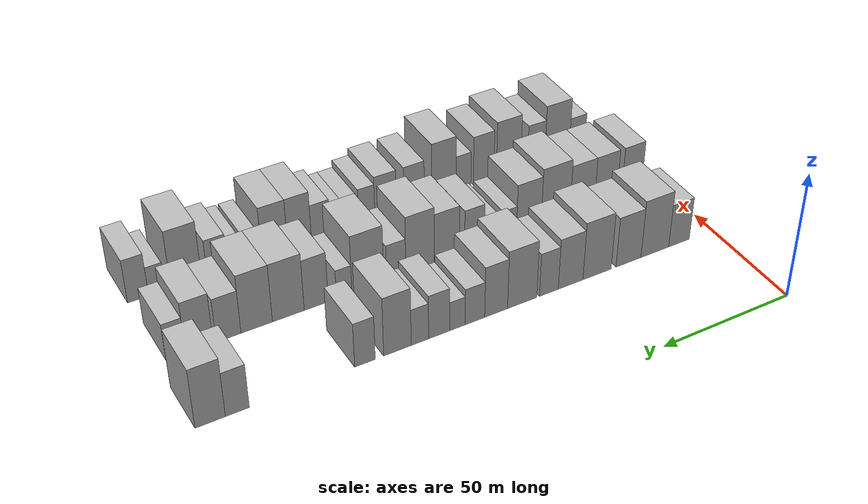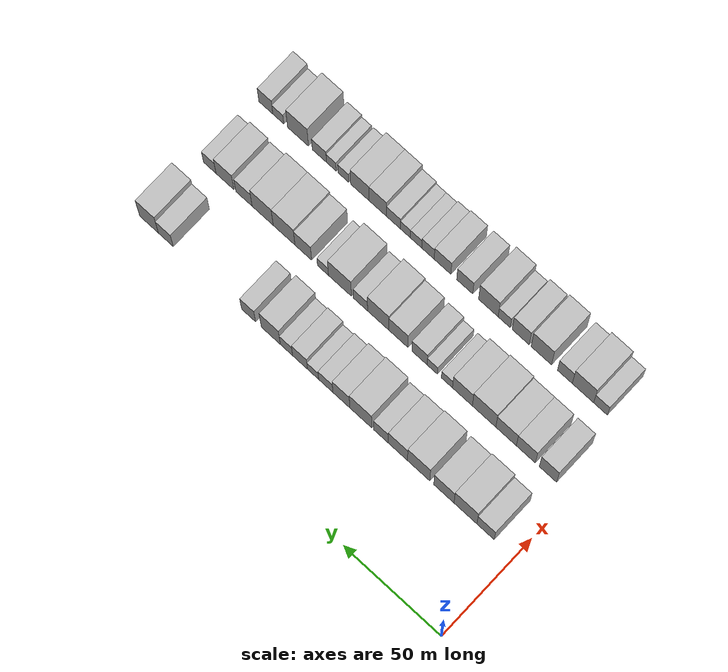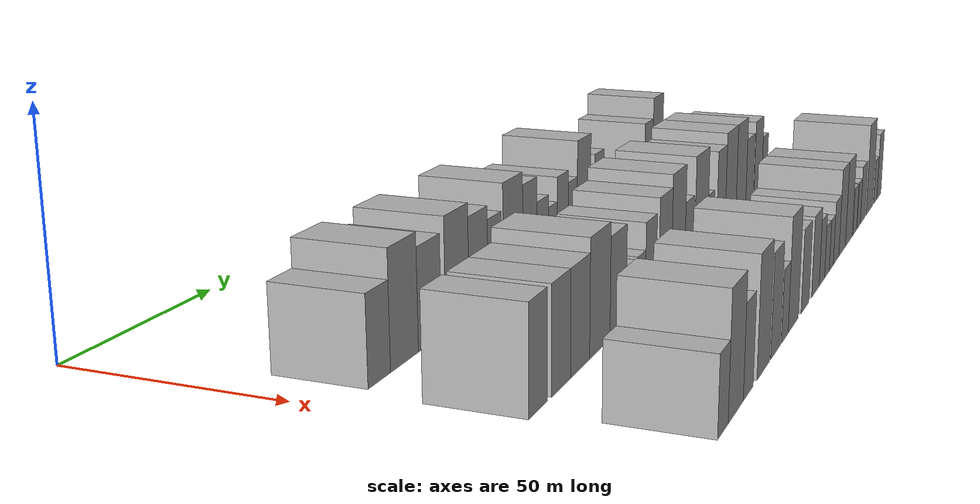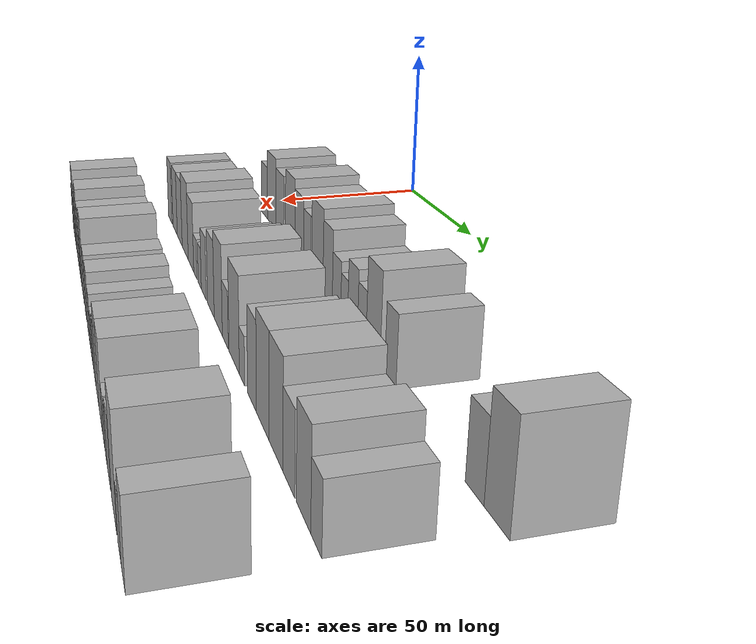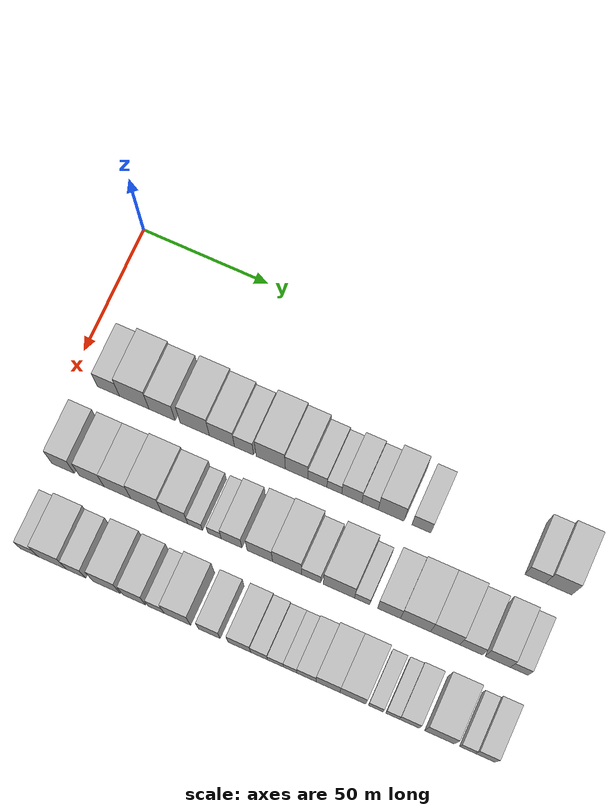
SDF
<sdf version="1.6">
 <world name="default">
  <model name="building_40">
   <static>1</static>
   <pose>50.0000 14.4750 0 0.000000 0.000000 0.000000</pose>
   <link name="link">
    <pose>0 0 9.00 0 0 0</pose>
    <collision name="collision"><geometry><box><size>20.0000 8.7886 18.0000</size></box></geometry></collision>
    <visual name="visual">
     <cast_shadows>0</cast_shadows>
     <geometry><box><size>20.0000 8.7886 18.0000</size></box></geometry>
     <material>
      <script>
       <uri>model://HANNAS_wall/materials/scripts</uri>
       <uri>model://HANNAS_wall/materials/textures</uri>
       <name>vrc/HANNAS_wall</name>
      </script>
     </material>
    </visual>
   </link>
  </model>
  <model name="building_41">
   <static>1</static>
   <pose>50.0000 24.6929 0 0.000000 0.000000 0.000000</pose>
   <link name="link">
    <pose>0 0 12.00 0 0 0</pose>
    <collision name="collision"><geometry><box><size>20.0000 11.6471 24.0000</size></box></geometry></collision>
    <visual name="visual">
     <cast_shadows>0</cast_shadows>
     <geometry><box><size>20.0000 11.6471 24.0000</size></box></geometry>
     <material>
      <script>
       <uri>model://HANNAS_wall/materials/scripts</uri>
       <uri>model://HANNAS_wall/materials/textures</uri>
       <name>vrc/HANNAS_wall</name>
      </script>
     </material>
    </visual>
   </link>
  </model>
  <model name="building_42">
   <static>1</static>
   <pose>50.0000 35.6729 0 0.000000 0.000000 0.000000</pose>
   <link name="link">
    <pose>0 0 10.50 0 0 0</pose>
    <collision name="collision"><geometry><box><size>20.0000 10.3129 21.0000</size></box></geometry></collision>
    <visual name="visual">
     <cast_shadows>0</cast_shadows>
     <geometry><box><size>20.0000 10.3129 21.0000</size></box></geometry>
     <material>
      <script>
       <uri>model://HANNAS_wall/materials/scripts</uri>
       <uri>model://HANNAS_wall/materials/textures</uri>
       <name>vrc/HANNAS_wall</name>
      </script>
     </material>
    </visual>
   </link>
  </model>
  <model name="building_43">
   <static>1</static>
   <pose>50.0000 48.5430 0 0.000000 0.000000 0.000000</pose>
   <link name="link">
    <pose>0 0 12.00 0 0 0</pose>
    <collision name="collision"><geometry><box><size>20.0000 11.4274 24.0000</size></box></geometry></collision>
    <visual name="visual">
     <cast_shadows>0</cast_shadows>
     <geometry><box><size>20.0000 11.4274 24.0000</size></box></geometry>
     <material>
      <script>
       <uri>model://HANNAS_wall/materials/scripts</uri>
       <uri>model://HANNAS_wall/materials/textures</uri>
       <name>vrc/HANNAS_wall</name>
      </script>
     </material>
    </visual>
   </link>
  </model>
  <model name="building_44">
   <static>1</static>
   <pose>50.0000 59.1846 0 0.000000 0.000000 0.000000</pose>
   <link name="link">
    <pose>0 0 10.50 0 0 0</pose>
    <collision name="collision"><geometry><box><size>20.0000 9.8557 21.0000</size></box></geometry></collision>
    <visual name="visual">
     <cast_shadows>0</cast_shadows>
     <geometry><box><size>20.0000 9.8557 21.0000</size></box></geometry>
     <material>
      <script>
       <uri>model://HANNAS_wall/materials/scripts</uri>
       <uri>model://HANNAS_wall/materials/textures</uri>
       <name>vrc/HANNAS_wall</name>
      </script>
     </material>
    </visual>
   </link>
  </model>
  <model name="building_45">
   <static>1</static>
   <pose>50.0000 67.8350 0 0.000000 0.000000 0.000000</pose>
   <link name="link">
    <pose>0 0 9.00 0 0 0</pose>
    <collision name="collision"><geometry><box><size>20.0000 7.4450 18.0000</size></box></geometry></collision>
    <visual name="visual">
     <cast_shadows>0</cast_shadows>
     <geometry><box><size>20.0000 7.4450 18.0000</size></box></geometry>
     <material>
      <script>
       <uri>model://HANNAS_wall/materials/scripts</uri>
       <uri>model://HANNAS_wall/materials/textures</uri>
       <name>vrc/HANNAS_wall</name>
      </script>
     </material>
    </visual>
   </link>
  </model>
  <model name="building_46">
   <static>1</static>
   <pose>50.0000 78.2285 0 0.000000 0.000000 0.000000</pose>
   <link name="link">
    <pose>0 0 12.00 0 0 0</pose>
    <collision name="collision"><geometry><box><size>20.0000 11.3419 24.0000</size></box></geometry></collision>
    <visual name="visual">
     <cast_shadows>0</cast_shadows>
     <geometry><box><size>20.0000 11.3419 24.0000</size></box></geometry>
     <material>
      <script>
       <uri>model://HANNAS_wall/materials/scripts</uri>
       <uri>model://HANNAS_wall/materials/textures</uri>
       <name>vrc/HANNAS_wall</name>
      </script>
     </material>
    </visual>
   </link>
  </model>
  <model name="building_47">
   <static>1</static>
   <pose>50.0000 88.2639 0 0.000000 0.000000 0.000000</pose>
   <link name="link">
    <pose>0 0 10.50 0 0 0</pose>
    <collision name="collision"><geometry><box><size>20.0000 8.7290 21.0000</size></box></geometry></collision>
    <visual name="visual">
     <cast_shadows>0</cast_shadows>
     <geometry><box><size>20.0000 8.7290 21.0000</size></box></geometry>
     <material>
      <script>
       <uri>model://HANNAS_wall/materials/scripts</uri>
       <uri>model://HANNAS_wall/materials/textures</uri>
       <name>vrc/HANNAS_wall</name>
      </script>
     </material>
    </visual>
   </link>
  </model>
  <model name="building_48">
   <static>1</static>
   <pose>50.0000 96.3212 0 0.000000 0.000000 0.000000</pose>
   <link name="link">
    <pose>0 0 7.50 0 0 0</pose>
    <collision name="collision"><geometry><box><size>20.0000 7.3855 15.0000</size></box></geometry></collision>
    <visual name="visual">
     <cast_shadows>0</cast_shadows>
     <geometry><box><size>20.0000 7.3855 15.0000</size></box></geometry>
     <material>
      <script>
       <uri>model://HANNAS_wall/materials/scripts</uri>
       <uri>model://HANNAS_wall/materials/textures</uri>
       <name>vrc/HANNAS_wall</name>
      </script>
     </material>
    </visual>
   </link>
  </model>
  <model name="building_49">
   <static>1</static>
   <pose>50.0000 102.8919 0 0.000000 0.000000 0.000000</pose>
   <link name="link">
    <pose>0 0 6.00 0 0 0</pose>
    <collision name="collision"><geometry><box><size>20.0000 5.7560 12.0000</size></box></geometry></collision>
    <visual name="visual">
     <cast_shadows>0</cast_shadows>
     <geometry><box><size>20.0000 5.7560 12.0000</size></box></geometry>
     <material>
      <script>
       <uri>model://HANNAS_wall/materials/scripts</uri>
       <uri>model://HANNAS_wall/materials/textures</uri>
       <name>vrc/HANNAS_wall</name>
      </script>
     </material>
    </visual>
   </link>
  </model>
  <model name="building_50">
   <static>1</static>
   <pose>50.0000 109.6371 0 0.000000 0.000000 0.000000</pose>
   <link name="link">
    <pose>0 0 9.00 0 0 0</pose>
    <collision name="collision"><geometry><box><size>20.0000 7.7343 18.0000</size></box></geometry></collision>
    <visual name="visual">
     <cast_shadows>0</cast_shadows>
     <geometry><box><size>20.0000 7.7343 18.0000</size></box></geometry>
     <material>
      <script>
       <uri>model://HANNAS_wall/materials/scripts</uri>
       <uri>model://HANNAS_wall/materials/textures</uri>
       <name>vrc/HANNAS_wall</name>
      </script>
     </material>
    </visual>
   </link>
  </model>
  <model name="building_51">
   <static>1</static>
   <pose>50.0000 116.6719 0 0.000000 0.000000 0.000000</pose>
   <link name="link">
    <pose>0 0 7.50 0 0 0</pose>
    <collision name="collision"><geometry><box><size>20.0000 6.3353 15.0000</size></box></geometry></collision>
    <visual name="visual">
     <cast_shadows>0</cast_shadows>
     <geometry><box><size>20.0000 6.3353 15.0000</size></box></geometry>
     <material>
      <script>
       <uri>model://HANNAS_wall/materials/scripts</uri>
       <uri>model://HANNAS_wall/materials/textures</uri>
       <name>vrc/HANNAS_wall</name>
      </script>
     </material>
    </visual>
   </link>
  </model>
  <model name="building_52">
   <static>1</static>
   <pose>50.0000 124.7940 0 0.000000 0.000000 0.000000</pose>
   <link name="link">
    <pose>0 0 12.00 0 0 0</pose>
    <collision name="collision"><geometry><box><size>20.0000 9.9088 24.0000</size></box></geometry></collision>
    <visual name="visual">
     <cast_shadows>0</cast_shadows>
     <geometry><box><size>20.0000 9.9088 24.0000</size></box></geometry>
     <material>
      <script>
       <uri>model://HANNAS_wall/materials/scripts</uri>
       <uri>model://HANNAS_wall/materials/textures</uri>
       <name>vrc/HANNAS_wall</name>
      </script>
     </material>
    </visual>
   </link>
  </model>
  <model name="building_53">
   <static>1</static>
   <pose>50.0000 136.3859 0 0.000000 0.000000 0.000000</pose>
   <link name="link">
    <pose>0 0 9.00 0 0 0</pose>
    <collision name="collision"><geometry><box><size>20.0000 7.2751 18.0000</size></box></geometry></collision>
    <visual name="visual">
     <cast_shadows>0</cast_shadows>
     <geometry><box><size>20.0000 7.2751 18.0000</size></box></geometry>
     <material>
      <script>
       <uri>model://HANNAS_wall/materials/scripts</uri>
       <uri>model://HANNAS_wall/materials/textures</uri>
       <name>vrc/HANNAS_wall</name>
      </script>
     </material>
    </visual>
   </link>
  </model>
  <model name="building_54">
   <static>1</static>
   <pose>50.0000 179.7932 0 0.000000 0.000000 0.000000</pose>
   <link name="link">
    <pose>0 0 9.00 0 0 0</pose>
    <collision name="collision"><geometry><box><size>20.0000 7.8465 18.0000</size></box></geometry></collision>
    <visual name="visual">
     <cast_shadows>0</cast_shadows>
     <geometry><box><size>20.0000 7.8465 18.0000</size></box></geometry>
     <material>
      <script>
       <uri>model://HANNAS_wall/materials/scripts</uri>
       <uri>model://HANNAS_wall/materials/textures</uri>
       <name>vrc/HANNAS_wall</name>
      </script>
     </material>
    </visual>
   </link>
  </model>
  <model name="building_55">
   <static>1</static>
   <pose>50.0000 188.6516 0 0.000000 0.000000 0.000000</pose>
   <link name="link">
    <pose>0 0 12.00 0 0 0</pose>
    <collision name="collision"><geometry><box><size>20.0000 9.8704 24.0000</size></box></geometry></collision>
    <visual name="visual">
     <cast_shadows>0</cast_shadows>
     <geometry><box><size>20.0000 9.8704 24.0000</size></box></geometry>
     <material>
      <script>
       <uri>model://HANNAS_wall/materials/scripts</uri>
       <uri>model://HANNAS_wall/materials/textures</uri>
       <name>vrc/HANNAS_wall</name>
      </script>
     </material>
    </visual>
   </link>
  </model>
  <model name="building_111">
   <static>1</static>
   <pose>82.0000 11.9970 0 0.000000 0.000000 0.000000</pose>
   <link name="link">
    <pose>0 0 10.50 0 0 0</pose>
    <collision name="collision"><geometry><box><size>20.0000 8.8258 21.0000</size></box></geometry></collision>
    <visual name="visual">
     <cast_shadows>0</cast_shadows>
     <geometry><box><size>20.0000 8.8258 21.0000</size></box></geometry>
     <material>
      <script>
       <uri>model://HANNAS_wall/materials/scripts</uri>
       <uri>model://HANNAS_wall/materials/textures</uri>
       <name>vrc/HANNAS_wall</name>
      </script>
     </material>
    </visual>
   </link>
  </model>
  <model name="building_112">
   <static>1</static>
   <pose>82.0000 23.2399 0 0.000000 0.000000 0.000000</pose>
   <link name="link">
    <pose>0 0 10.50 0 0 0</pose>
    <collision name="collision"><geometry><box><size>20.0000 9.6600 21.0000</size></box></geometry></collision>
    <visual name="visual">
     <cast_shadows>0</cast_shadows>
     <geometry><box><size>20.0000 9.6600 21.0000</size></box></geometry>
     <material>
      <script>
       <uri>model://HANNAS_wall/materials/scripts</uri>
       <uri>model://HANNAS_wall/materials/textures</uri>
       <name>vrc/HANNAS_wall</name>
      </script>
     </material>
    </visual>
   </link>
  </model>
  <model name="building_113">
   <static>1</static>
   <pose>82.0000 33.3035 0 0.000000 0.000000 0.000000</pose>
   <link name="link">
    <pose>0 0 10.50 0 0 0</pose>
    <collision name="collision"><geometry><box><size>20.0000 10.4671 21.0000</size></box></geometry></collision>
    <visual name="visual">
     <cast_shadows>0</cast_shadows>
     <geometry><box><size>20.0000 10.4671 21.0000</size></box></geometry>
     <material>
      <script>
       <uri>model://HANNAS_wall/materials/scripts</uri>
       <uri>model://HANNAS_wall/materials/textures</uri>
       <name>vrc/HANNAS_wall</name>
      </script>
     </material>
    </visual>
   </link>
  </model>
  <model name="building_114">
   <static>1</static>
   <pose>82.0000 44.5344 0 0.000000 0.000000 0.000000</pose>
   <link name="link">
    <pose>0 0 12.00 0 0 0</pose>
    <collision name="collision"><geometry><box><size>20.0000 11.9947 24.0000</size></box></geometry></collision>
    <visual name="visual">
     <cast_shadows>0</cast_shadows>
     <geometry><box><size>20.0000 11.9947 24.0000</size></box></geometry>
     <material>
      <script>
       <uri>model://HANNAS_wall/materials/scripts</uri>
       <uri>model://HANNAS_wall/materials/textures</uri>
       <name>vrc/HANNAS_wall</name>
      </script>
     </material>
    </visual>
   </link>
  </model>
  <model name="building_115">
   <static>1</static>
   <pose>82.0000 55.6263 0 0.000000 0.000000 0.000000</pose>
   <link name="link">
    <pose>0 0 10.50 0 0 0</pose>
    <collision name="collision"><geometry><box><size>20.0000 10.1890 21.0000</size></box></geometry></collision>
    <visual name="visual">
     <cast_shadows>0</cast_shadows>
     <geometry><box><size>20.0000 10.1890 21.0000</size></box></geometry>
     <material>
      <script>
       <uri>model://HANNAS_wall/materials/scripts</uri>
       <uri>model://HANNAS_wall/materials/textures</uri>
       <name>vrc/HANNAS_wall</name>
      </script>
     </material>
    </visual>
   </link>
  </model>
  <model name="building_116">
   <static>1</static>
   <pose>82.0000 63.5853 0 0.000000 0.000000 0.000000</pose>
   <link name="link">
    <pose>0 0 6.00 0 0 0</pose>
    <collision name="collision"><geometry><box><size>20.0000 5.7289 12.0000</size></box></geometry></collision>
    <visual name="visual">
     <cast_shadows>0</cast_shadows>
     <geometry><box><size>20.0000 5.7289 12.0000</size></box></geometry>
     <material>
      <script>
       <uri>model://HANNAS_wall/materials/scripts</uri>
       <uri>model://HANNAS_wall/materials/textures</uri>
       <name>vrc/HANNAS_wall</name>
      </script>
     </material>
    </visual>
   </link>
  </model>
  <model name="building_117">
   <static>1</static>
   <pose>82.0000 71.0847 0 0.000000 0.000000 0.000000</pose>
   <link name="link">
    <pose>0 0 6.00 0 0 0</pose>
    <collision name="collision"><geometry><box><size>20.0000 5.2700 12.0000</size></box></geometry></collision>
    <visual name="visual">
     <cast_shadows>0</cast_shadows>
     <geometry><box><size>20.0000 5.2700 12.0000</size></box></geometry>
     <material>
      <script>
       <uri>model://HANNAS_wall/materials/scripts</uri>
       <uri>model://HANNAS_wall/materials/textures</uri>
       <name>vrc/HANNAS_wall</name>
      </script>
     </material>
    </visual>
   </link>
  </model>
  <model name="building_118">
   <static>1</static>
   <pose>82.0000 77.6762 0 0.000000 0.000000 0.000000</pose>
   <link name="link">
    <pose>0 0 9.00 0 0 0</pose>
    <collision name="collision"><geometry><box><size>20.0000 7.9129 18.0000</size></box></geometry></collision>
    <visual name="visual">
     <cast_shadows>0</cast_shadows>
     <geometry><box><size>20.0000 7.9129 18.0000</size></box></geometry>
     <material>
      <script>
       <uri>model://HANNAS_wall/materials/scripts</uri>
       <uri>model://HANNAS_wall/materials/textures</uri>
       <name>vrc/HANNAS_wall</name>
      </script>
     </material>
    </visual>
   </link>
  </model>
  <model name="building_119">
   <static>1</static>
   <pose>82.0000 88.5355 0 0.000000 0.000000 0.000000</pose>
   <link name="link">
    <pose>0 0 10.50 0 0 0</pose>
    <collision name="collision"><geometry><box><size>20.0000 9.8056 21.0000</size></box></geometry></collision>
    <visual name="visual">
     <cast_shadows>0</cast_shadows>
     <geometry><box><size>20.0000 9.8056 21.0000</size></box></geometry>
     <material>
      <script>
       <uri>model://HANNAS_wall/materials/scripts</uri>
       <uri>model://HANNAS_wall/materials/textures</uri>
       <name>vrc/HANNAS_wall</name>
      </script>
     </material>
    </visual>
   </link>
  </model>
  <model name="building_120">
   <static>1</static>
   <pose>82.0000 98.9620 0 0.000000 0.000000 0.000000</pose>
   <link name="link">
    <pose>0 0 12.00 0 0 0</pose>
    <collision name="collision"><geometry><box><size>20.0000 11.0475 24.0000</size></box></geometry></collision>
    <visual name="visual">
     <cast_shadows>0</cast_shadows>
     <geometry><box><size>20.0000 11.0475 24.0000</size></box></geometry>
     <material>
      <script>
       <uri>model://HANNAS_wall/materials/scripts</uri>
       <uri>model://HANNAS_wall/materials/textures</uri>
       <name>vrc/HANNAS_wall</name>
      </script>
     </material>
    </visual>
   </link>
  </model>
  <model name="building_121">
   <static>1</static>
   <pose>82.0000 108.1798 0 0.000000 0.000000 0.000000</pose>
   <link name="link">
    <pose>0 0 7.50 0 0 0</pose>
    <collision name="collision"><geometry><box><size>20.0000 7.3881 15.0000</size></box></geometry></collision>
    <visual name="visual">
     <cast_shadows>0</cast_shadows>
     <geometry><box><size>20.0000 7.3881 15.0000</size></box></geometry>
     <material>
      <script>
       <uri>model://HANNAS_wall/materials/scripts</uri>
       <uri>model://HANNAS_wall/materials/textures</uri>
       <name>vrc/HANNAS_wall</name>
      </script>
     </material>
    </visual>
   </link>
  </model>
  <model name="building_122">
   <static>1</static>
   <pose>82.0000 118.8424 0 0.000000 0.000000 0.000000</pose>
   <link name="link">
    <pose>0 0 12.00 0 0 0</pose>
    <collision name="collision"><geometry><box><size>20.0000 11.9371 24.0000</size></box></geometry></collision>
    <visual name="visual">
     <cast_shadows>0</cast_shadows>
     <geometry><box><size>20.0000 11.9371 24.0000</size></box></geometry>
     <material>
      <script>
       <uri>model://HANNAS_wall/materials/scripts</uri>
       <uri>model://HANNAS_wall/materials/textures</uri>
       <name>vrc/HANNAS_wall</name>
      </script>
     </material>
    </visual>
   </link>
  </model>
  <model name="building_123">
   <static>1</static>
   <pose>82.0000 127.6816 0 0.000000 0.000000 0.000000</pose>
   <link name="link">
    <pose>0 0 6.00 0 0 0</pose>
    <collision name="collision"><geometry><box><size>20.0000 5.7413 12.0000</size></box></geometry></collision>
    <visual name="visual">
     <cast_shadows>0</cast_shadows>
     <geometry><box><size>20.0000 5.7413 12.0000</size></box></geometry>
     <material>
      <script>
       <uri>model://HANNAS_wall/materials/scripts</uri>
       <uri>model://HANNAS_wall/materials/textures</uri>
       <name>vrc/HANNAS_wall</name>
      </script>
     </material>
    </visual>
   </link>
  </model>
  <model name="building_124">
   <static>1</static>
   <pose>82.0000 137.9189 0 0.000000 0.000000 0.000000</pose>
   <link name="link">
    <pose>0 0 10.50 0 0 0</pose>
    <collision name="collision"><geometry><box><size>20.0000 8.7333 21.0000</size></box></geometry></collision>
    <visual name="visual">
     <cast_shadows>0</cast_shadows>
     <geometry><box><size>20.0000 8.7333 21.0000</size></box></geometry>
     <material>
      <script>
       <uri>model://HANNAS_wall/materials/scripts</uri>
       <uri>model://HANNAS_wall/materials/textures</uri>
       <name>vrc/HANNAS_wall</name>
      </script>
     </material>
    </visual>
   </link>
  </model>
  <model name="building_125">
   <static>1</static>
   <pose>82.0000 147.9809 0 0.000000 0.000000 0.000000</pose>
   <link name="link">
    <pose>0 0 12.00 0 0 0</pose>
    <collision name="collision"><geometry><box><size>20.0000 11.3906 24.0000</size></box></geometry></collision>
    <visual name="visual">
     <cast_shadows>0</cast_shadows>
     <geometry><box><size>20.0000 11.3906 24.0000</size></box></geometry>
     <material>
      <script>
       <uri>model://HANNAS_wall/materials/scripts</uri>
       <uri>model://HANNAS_wall/materials/textures</uri>
       <name>vrc/HANNAS_wall</name>
      </script>
     </material>
    </visual>
   </link>
  </model>
  <model name="building_126">
   <static>1</static>
   <pose>82.0000 159.2081 0 0.000000 0.000000 0.000000</pose>
   <link name="link">
    <pose>0 0 12.00 0 0 0</pose>
    <collision name="collision"><geometry><box><size>20.0000 11.0638 24.0000</size></box></geometry></collision>
    <visual name="visual">
     <cast_shadows>0</cast_shadows>
     <geometry><box><size>20.0000 11.0638 24.0000</size></box></geometry>
     <material>
      <script>
       <uri>model://HANNAS_wall/materials/scripts</uri>
       <uri>model://HANNAS_wall/materials/textures</uri>
       <name>vrc/HANNAS_wall</name>
      </script>
     </material>
    </visual>
   </link>
  </model>
  <model name="building_127">
   <static>1</static>
   <pose>82.0000 169.0322 0 0.000000 0.000000 0.000000</pose>
   <link name="link">
    <pose>0 0 9.00 0 0 0</pose>
    <collision name="collision"><geometry><box><size>20.0000 8.5844 18.0000</size></box></geometry></collision>
    <visual name="visual">
     <cast_shadows>0</cast_shadows>
     <geometry><box><size>20.0000 8.5844 18.0000</size></box></geometry>
     <material>
      <script>
       <uri>model://HANNAS_wall/materials/scripts</uri>
       <uri>model://HANNAS_wall/materials/textures</uri>
       <name>vrc/HANNAS_wall</name>
      </script>
     </material>
    </visual>
   </link>
  </model>
  <model name="building_128">
   <static>1</static>
   <pose>82.0000 179.0316 0 0.000000 0.000000 0.000000</pose>
   <link name="link">
    <pose>0 0 10.50 0 0 0</pose>
    <collision name="collision"><geometry><box><size>20.0000 9.4143 21.0000</size></box></geometry></collision>
    <visual name="visual">
     <cast_shadows>0</cast_shadows>
     <geometry><box><size>20.0000 9.4143 21.0000</size></box></geometry>
     <material>
      <script>
       <uri>model://HANNAS_wall/materials/scripts</uri>
       <uri>model://HANNAS_wall/materials/textures</uri>
       <name>vrc/HANNAS_wall</name>
      </script>
     </material>
    </visual>
   </link>
  </model>
  <model name="building_129">
   <static>1</static>
   <pose>82.0000 187.0549 0 0.000000 0.000000 0.000000</pose>
   <link name="link">
    <pose>0 0 7.50 0 0 0</pose>
    <collision name="collision"><geometry><box><size>20.0000 6.6323 15.0000</size></box></geometry></collision>
    <visual name="visual">
     <cast_shadows>0</cast_shadows>
     <geometry><box><size>20.0000 6.6323 15.0000</size></box></geometry>
     <material>
      <script>
       <uri>model://HANNAS_wall/materials/scripts</uri>
       <uri>model://HANNAS_wall/materials/textures</uri>
       <name>vrc/HANNAS_wall</name>
      </script>
     </material>
    </visual>
   </link>
  </model>
  <model name="building_184">
   <static>1</static>
   <pose>114.0000 14.2904 0 0.000000 0.000000 0.000000</pose>
   <link name="link">
    <pose>0 0 7.50 0 0 0</pose>
    <collision name="collision"><geometry><box><size>20.0000 7.0283 15.0000</size></box></geometry></collision>
    <visual name="visual">
     <cast_shadows>0</cast_shadows>
     <geometry><box><size>20.0000 7.0283 15.0000</size></box></geometry>
     <material>
      <script>
       <uri>model://HANNAS_wall/materials/scripts</uri>
       <uri>model://HANNAS_wall/materials/textures</uri>
       <name>vrc/HANNAS_wall</name>
      </script>
     </material>
    </visual>
   </link>
  </model>
  <model name="building_185">
   <static>1</static>
   <pose>114.0000 23.2356 0 0.000000 0.000000 0.000000</pose>
   <link name="link">
    <pose>0 0 12.00 0 0 0</pose>
    <collision name="collision"><geometry><box><size>20.0000 10.8620 24.0000</size></box></geometry></collision>
    <visual name="visual">
     <cast_shadows>0</cast_shadows>
     <geometry><box><size>20.0000 10.8620 24.0000</size></box></geometry>
     <material>
      <script>
       <uri>model://HANNAS_wall/materials/scripts</uri>
       <uri>model://HANNAS_wall/materials/textures</uri>
       <name>vrc/HANNAS_wall</name>
      </script>
     </material>
    </visual>
   </link>
  </model>
  <model name="building_186">
   <static>1</static>
   <pose>114.0000 32.4415 0 0.000000 0.000000 0.000000</pose>
   <link name="link">
    <pose>0 0 9.00 0 0 0</pose>
    <collision name="collision"><geometry><box><size>20.0000 7.5498 18.0000</size></box></geometry></collision>
    <visual name="visual">
     <cast_shadows>0</cast_shadows>
     <geometry><box><size>20.0000 7.5498 18.0000</size></box></geometry>
     <material>
      <script>
       <uri>model://HANNAS_wall/materials/scripts</uri>
       <uri>model://HANNAS_wall/materials/textures</uri>
       <name>vrc/HANNAS_wall</name>
      </script>
     </material>
    </visual>
   </link>
  </model>
  <model name="building_187">
   <static>1</static>
   <pose>114.0000 44.4510 0 0.000000 0.000000 0.000000</pose>
   <link name="link">
    <pose>0 0 12.00 0 0 0</pose>
    <collision name="collision"><geometry><box><size>20.0000 10.4692 24.0000</size></box></geometry></collision>
    <visual name="visual">
     <cast_shadows>0</cast_shadows>
     <geometry><box><size>20.0000 10.4692 24.0000</size></box></geometry>
     <material>
      <script>
       <uri>model://HANNAS_wall/materials/scripts</uri>
       <uri>model://HANNAS_wall/materials/textures</uri>
       <name>vrc/HANNAS_wall</name>
      </script>
     </material>
    </visual>
   </link>
  </model>
  <model name="building_188">
   <static>1</static>
   <pose>114.0000 55.0362 0 0.000000 0.000000 0.000000</pose>
   <link name="link">
    <pose>0 0 10.50 0 0 0</pose>
    <collision name="collision"><geometry><box><size>20.0000 8.7013 21.0000</size></box></geometry></collision>
    <visual name="visual">
     <cast_shadows>0</cast_shadows>
     <geometry><box><size>20.0000 8.7013 21.0000</size></box></geometry>
     <material>
      <script>
       <uri>model://HANNAS_wall/materials/scripts</uri>
       <uri>model://HANNAS_wall/materials/textures</uri>
       <name>vrc/HANNAS_wall</name>
      </script>
     </material>
    </visual>
   </link>
  </model>
  <model name="building_189">
   <static>1</static>
   <pose>114.0000 63.4924 0 0.000000 0.000000 0.000000</pose>
   <link name="link">
    <pose>0 0 7.50 0 0 0</pose>
    <collision name="collision"><geometry><box><size>20.0000 6.2111 15.0000</size></box></geometry></collision>
    <visual name="visual">
     <cast_shadows>0</cast_shadows>
     <geometry><box><size>20.0000 6.2111 15.0000</size></box></geometry>
     <material>
      <script>
       <uri>model://HANNAS_wall/materials/scripts</uri>
       <uri>model://HANNAS_wall/materials/textures</uri>
       <name>vrc/HANNAS_wall</name>
      </script>
     </material>
    </visual>
   </link>
  </model>
  <model name="building_190">
   <static>1</static>
   <pose>114.0000 71.6372 0 0.000000 0.000000 0.000000</pose>
   <link name="link">
    <pose>0 0 12.00 0 0 0</pose>
    <collision name="collision"><geometry><box><size>20.0000 10.0785 24.0000</size></box></geometry></collision>
    <visual name="visual">
     <cast_shadows>0</cast_shadows>
     <geometry><box><size>20.0000 10.0785 24.0000</size></box></geometry>
     <material>
      <script>
       <uri>model://HANNAS_wall/materials/scripts</uri>
       <uri>model://HANNAS_wall/materials/textures</uri>
       <name>vrc/HANNAS_wall</name>
      </script>
     </material>
    </visual>
   </link>
  </model>
  <model name="building_191">
   <static>1</static>
   <pose>114.0000 83.8260 0 0.000000 0.000000 0.000000</pose>
   <link name="link">
    <pose>0 0 9.00 0 0 0</pose>
    <collision name="collision"><geometry><box><size>20.0000 8.2990 18.0000</size></box></geometry></collision>
    <visual name="visual">
     <cast_shadows>0</cast_shadows>
     <geometry><box><size>20.0000 8.2990 18.0000</size></box></geometry>
     <material>
      <script>
       <uri>model://HANNAS_wall/materials/scripts</uri>
       <uri>model://HANNAS_wall/materials/textures</uri>
       <name>vrc/HANNAS_wall</name>
      </script>
     </material>
    </visual>
   </link>
  </model>
  <model name="building_192">
   <static>1</static>
   <pose>114.0000 95.2939 0 0.000000 0.000000 0.000000</pose>
   <link name="link">
    <pose>0 0 9.00 0 0 0</pose>
    <collision name="collision"><geometry><box><size>20.0000 8.6368 18.0000</size></box></geometry></collision>
    <visual name="visual">
     <cast_shadows>0</cast_shadows>
     <geometry><box><size>20.0000 8.6368 18.0000</size></box></geometry>
     <material>
      <script>
       <uri>model://HANNAS_wall/materials/scripts</uri>
       <uri>model://HANNAS_wall/materials/textures</uri>
       <name>vrc/HANNAS_wall</name>
      </script>
     </material>
    </visual>
   </link>
  </model>
  <model name="building_193">
   <static>1</static>
   <pose>114.0000 102.8141 0 0.000000 0.000000 0.000000</pose>
   <link name="link">
    <pose>0 0 7.50 0 0 0</pose>
    <collision name="collision"><geometry><box><size>20.0000 6.4036 15.0000</size></box></geometry></collision>
    <visual name="visual">
     <cast_shadows>0</cast_shadows>
     <geometry><box><size>20.0000 6.4036 15.0000</size></box></geometry>
     <material>
      <script>
       <uri>model://HANNAS_wall/materials/scripts</uri>
       <uri>model://HANNAS_wall/materials/textures</uri>
       <name>vrc/HANNAS_wall</name>
      </script>
     </material>
    </visual>
   </link>
  </model>
  <model name="building_194">
   <static>1</static>
   <pose>114.0000 109.0069 0 0.000000 0.000000 0.000000</pose>
   <link name="link">
    <pose>0 0 6.00 0 0 0</pose>
    <collision name="collision"><geometry><box><size>20.0000 5.9820 12.0000</size></box></geometry></collision>
    <visual name="visual">
     <cast_shadows>0</cast_shadows>
     <geometry><box><size>20.0000 5.9820 12.0000</size></box></geometry>
     <material>
      <script>
       <uri>model://HANNAS_wall/materials/scripts</uri>
       <uri>model://HANNAS_wall/materials/textures</uri>
       <name>vrc/HANNAS_wall</name>
      </script>
     </material>
    </visual>
   </link>
  </model>
  <model name="building_195">
   <static>1</static>
   <pose>114.0000 114.5570 0 0.000000 0.000000 0.000000</pose>
   <link name="link">
    <pose>0 0 6.00 0 0 0</pose>
    <collision name="collision"><geometry><box><size>20.0000 5.1183 12.0000</size></box></geometry></collision>
    <visual name="visual">
     <cast_shadows>0</cast_shadows>
     <geometry><box><size>20.0000 5.1183 12.0000</size></box></geometry>
     <material>
      <script>
       <uri>model://HANNAS_wall/materials/scripts</uri>
       <uri>model://HANNAS_wall/materials/textures</uri>
       <name>vrc/HANNAS_wall</name>
      </script>
     </material>
    </visual>
   </link>
  </model>
  <model name="building_196">
   <static>1</static>
   <pose>114.0000 120.7484 0 0.000000 0.000000 0.000000</pose>
   <link name="link">
    <pose>0 0 7.50 0 0 0</pose>
    <collision name="collision"><geometry><box><size>20.0000 7.2645 15.0000</size></box></geometry></collision>
    <visual name="visual">
     <cast_shadows>0</cast_shadows>
     <geometry><box><size>20.0000 7.2645 15.0000</size></box></geometry>
     <material>
      <script>
       <uri>model://HANNAS_wall/materials/scripts</uri>
       <uri>model://HANNAS_wall/materials/textures</uri>
       <name>vrc/HANNAS_wall</name>
      </script>
     </material>
    </visual>
   </link>
  </model>
  <model name="building_197">
   <static>1</static>
   <pose>114.0000 128.8993 0 0.000000 0.000000 0.000000</pose>
   <link name="link">
    <pose>0 0 10.50 0 0 0</pose>
    <collision name="collision"><geometry><box><size>20.0000 9.0373 21.0000</size></box></geometry></collision>
    <visual name="visual">
     <cast_shadows>0</cast_shadows>
     <geometry><box><size>20.0000 9.0373 21.0000</size></box></geometry>
     <material>
      <script>
       <uri>model://HANNAS_wall/materials/scripts</uri>
       <uri>model://HANNAS_wall/materials/textures</uri>
       <name>vrc/HANNAS_wall</name>
      </script>
     </material>
    </visual>
   </link>
  </model>
  <model name="building_198">
   <static>1</static>
   <pose>114.0000 138.2753 0 0.000000 0.000000 0.000000</pose>
   <link name="link">
    <pose>0 0 10.50 0 0 0</pose>
    <collision name="collision"><geometry><box><size>20.0000 9.7147 21.0000</size></box></geometry></collision>
    <visual name="visual">
     <cast_shadows>0</cast_shadows>
     <geometry><box><size>20.0000 9.7147 21.0000</size></box></geometry>
     <material>
      <script>
       <uri>model://HANNAS_wall/materials/scripts</uri>
       <uri>model://HANNAS_wall/materials/textures</uri>
       <name>vrc/HANNAS_wall</name>
      </script>
     </material>
    </visual>
   </link>
  </model>
  <model name="building_199">
   <static>1</static>
   <pose>114.0000 146.9001 0 0.000000 0.000000 0.000000</pose>
   <link name="link">
    <pose>0 0 6.00 0 0 0</pose>
    <collision name="collision"><geometry><box><size>20.0000 5.5349 12.0000</size></box></geometry></collision>
    <visual name="visual">
     <cast_shadows>0</cast_shadows>
     <geometry><box><size>20.0000 5.5349 12.0000</size></box></geometry>
     <material>
      <script>
       <uri>model://HANNAS_wall/materials/scripts</uri>
       <uri>model://HANNAS_wall/materials/textures</uri>
       <name>vrc/HANNAS_wall</name>
      </script>
     </material>
    </visual>
   </link>
  </model>
  <model name="building_200">
   <static>1</static>
   <pose>114.0000 153.1999 0 0.000000 0.000000 0.000000</pose>
   <link name="link">
    <pose>0 0 6.00 0 0 0</pose>
    <collision name="collision"><geometry><box><size>20.0000 5.0647 12.0000</size></box></geometry></collision>
    <visual name="visual">
     <cast_shadows>0</cast_shadows>
     <geometry><box><size>20.0000 5.0647 12.0000</size></box></geometry>
     <material>
      <script>
       <uri>model://HANNAS_wall/materials/scripts</uri>
       <uri>model://HANNAS_wall/materials/textures</uri>
       <name>vrc/HANNAS_wall</name>
      </script>
     </material>
    </visual>
   </link>
  </model>
  <model name="building_201">
   <static>1</static>
   <pose>114.0000 159.4773 0 0.000000 0.000000 0.000000</pose>
   <link name="link">
    <pose>0 0 7.50 0 0 0</pose>
    <collision name="collision"><geometry><box><size>20.0000 7.4902 15.0000</size></box></geometry></collision>
    <visual name="visual">
     <cast_shadows>0</cast_shadows>
     <geometry><box><size>20.0000 7.4902 15.0000</size></box></geometry>
     <material>
      <script>
       <uri>model://HANNAS_wall/materials/scripts</uri>
       <uri>model://HANNAS_wall/materials/textures</uri>
       <name>vrc/HANNAS_wall</name>
      </script>
     </material>
    </visual>
   </link>
  </model>
  <model name="building_202">
   <static>1</static>
   <pose>114.0000 170.7312 0 0.000000 0.000000 0.000000</pose>
   <link name="link">
    <pose>0 0 12.00 0 0 0</pose>
    <collision name="collision"><geometry><box><size>20.0000 11.0175 24.0000</size></box></geometry></collision>
    <visual name="visual">
     <cast_shadows>0</cast_shadows>
     <geometry><box><size>20.0000 11.0175 24.0000</size></box></geometry>
     <material>
      <script>
       <uri>model://HANNAS_wall/materials/scripts</uri>
       <uri>model://HANNAS_wall/materials/textures</uri>
       <name>vrc/HANNAS_wall</name>
      </script>
     </material>
    </visual>
   </link>
  </model>
  <model name="building_203">
   <static>1</static>
   <pose>114.0000 181.1240 0 0.000000 0.000000 0.000000</pose>
   <link name="link">
    <pose>0 0 6.00 0 0 0</pose>
    <collision name="collision"><geometry><box><size>20.0000 5.7682 12.0000</size></box></geometry></collision>
    <visual name="visual">
     <cast_shadows>0</cast_shadows>
     <geometry><box><size>20.0000 5.7682 12.0000</size></box></geometry>
     <material>
      <script>
       <uri>model://HANNAS_wall/materials/scripts</uri>
       <uri>model://HANNAS_wall/materials/textures</uri>
       <name>vrc/HANNAS_wall</name>
      </script>
     </material>
    </visual>
   </link>
  </model>
  <model name="building_204">
   <static>1</static>
   <pose>114.0000 187.6835 0 0.000000 0.000000 0.000000</pose>
   <link name="link">
    <pose>0 0 9.00 0 0 0</pose>
    <collision name="collision"><geometry><box><size>20.0000 7.3507 18.0000</size></box></geometry></collision>
    <visual name="visual">
     <cast_shadows>0</cast_shadows>
     <geometry><box><size>20.0000 7.3507 18.0000</size></box></geometry>
     <material>
      <script>
       <uri>model://HANNAS_wall/materials/scripts</uri>
       <uri>model://HANNAS_wall/materials/textures</uri>
       <name>vrc/HANNAS_wall</name>
      </script>
     </material>
    </visual>
   </link>
  </model>
 </world>
</sdf>
